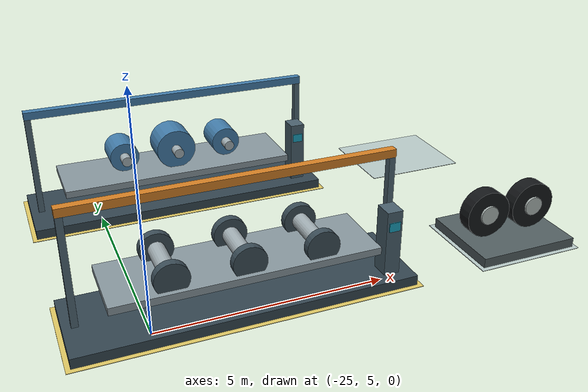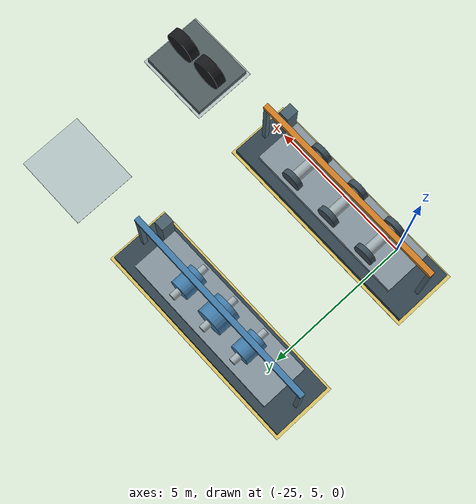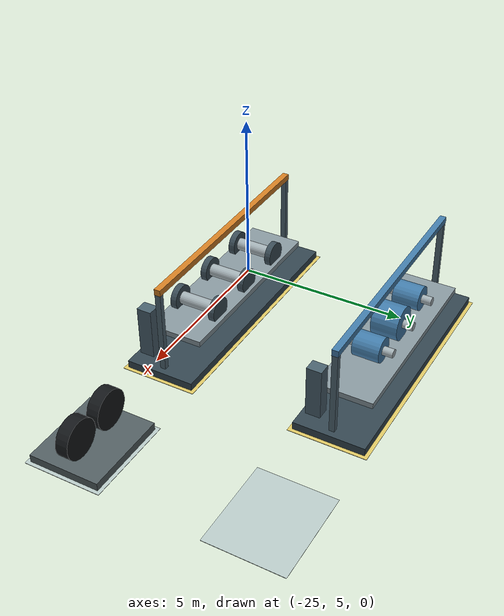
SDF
<sdf version="1.7">
 <world name="warehouse_layout_demo">
  <include><uri>model://sun</uri></include>
  <model name="part_stage_2_line_1_nw_pad">
   <static>true</static>
   <pose>-23.0 5.5 0.012 0 0 0</pose>
   <link name="marking">
    <visual name="visual">
     <geometry><box><size>7.4 2.2 0.012</size></box></geometry>
     <material><ambient>0.87 0.78 0.39 1</ambient><diffuse>0.87 0.78 0.39 1</diffuse></material>
    </visual>
   </link>
  </model>
  <model name="part_stage_2_line_1_nw">
   <static>true</static>
   <pose>-23.0 5.5 0 0 0 0</pose>
   <link name="fixture">
    <collision name="collision">
     <pose>0 0 1.4 0 0 0</pose>
     <geometry><box><size>7.2 2.0 2.8</size></box></geometry>
    </collision>
    <visual name="machine_base">
     <pose>0 0 0.12 0 0 0</pose>
     <geometry><box><size>7.2 2.0 0.24</size></box></geometry>
     <material><ambient>0.20 0.27 0.31 1</ambient><diffuse>0.20 0.27 0.31 1</diffuse></material>
    </visual>
    <visual name="work_table">
     <pose>0 0 0.92 0 0 0</pose>
     <geometry><box><size>5.6 1.6 0.16</size></box></geometry>
     <material><ambient>0.53 0.59 0.62 1</ambient><diffuse>0.53 0.59 0.62 1</diffuse></material>
    </visual>
    <visual name="controller">
     <pose>3.05 -0.63 1.06 0 0 0</pose>
     <geometry><box><size>0.35 0.42 1.46</size></box></geometry>
     <material><ambient>0.29 0.38 0.43 1</ambient><diffuse>0.29 0.38 0.43 1</diffuse></material>
    </visual>
    <visual name="control_screen">
     <pose>3.05 -0.85 1.45 0 0 0</pose>
     <geometry><box><size>0.25 0.02 0.2</size></box></geometry>
     <material><ambient>0.09 0.64 0.75 1</ambient><diffuse>0.09 0.64 0.75 1</diffuse></material>
    </visual>
    <visual name="hoist_post_0">
     <pose>-3.35 0 1.4 0 0 0</pose>
     <geometry><box><size>0.14 0.16 2.72</size></box></geometry>
     <material><ambient>0.31 0.40 0.45 1</ambient><diffuse>0.31 0.40 0.45 1</diffuse></material>
    </visual>
    <visual name="hoist_post_1">
     <pose>3.35 0 1.4 0 0 0</pose>
     <geometry><box><size>0.14 0.16 2.72</size></box></geometry>
     <material><ambient>0.31 0.40 0.45 1</ambient><diffuse>0.31 0.40 0.45 1</diffuse></material>
    </visual>
    <visual name="hoist_beam">
     <pose>0 0 2.71 0 0 0</pose>
     <geometry><box><size>6.85 0.18 0.18</size></box></geometry>
     <material><ambient>0.83 0.50 0.14 1</ambient><diffuse>0.83 0.50 0.14 1</diffuse></material>
    </visual>
    <visual name="axle_0">
     <pose>-1.55 0 1.22 1.57079632679 0 0</pose>
     <geometry><cylinder><radius>0.18</radius><length>1.36</length></cylinder></geometry>
     <material><ambient>0.64 0.69 0.71 1</ambient><diffuse>0.64 0.69 0.71 1</diffuse></material>
    </visual>
    <visual name="hub_0_0">
     <pose>-1.55 -0.6 1.22 1.57079632679 0 0</pose>
     <geometry><cylinder><radius>0.36</radius><length>0.18</length></cylinder></geometry>
     <material><ambient>0.23 0.30 0.34 1</ambient><diffuse>0.23 0.30 0.34 1</diffuse></material>
    </visual>
    <visual name="hub_0_1">
     <pose>-1.55 0.6 1.22 1.57079632679 0 0</pose>
     <geometry><cylinder><radius>0.36</radius><length>0.18</length></cylinder></geometry>
     <material><ambient>0.23 0.30 0.34 1</ambient><diffuse>0.23 0.30 0.34 1</diffuse></material>
    </visual>
    <visual name="axle_1">
     <pose>0 0 1.22 1.57079632679 0 0</pose>
     <geometry><cylinder><radius>0.18</radius><length>1.36</length></cylinder></geometry>
     <material><ambient>0.64 0.69 0.71 1</ambient><diffuse>0.64 0.69 0.71 1</diffuse></material>
    </visual>
    <visual name="hub_1_0">
     <pose>0 -0.6 1.22 1.57079632679 0 0</pose>
     <geometry><cylinder><radius>0.36</radius><length>0.18</length></cylinder></geometry>
     <material><ambient>0.23 0.30 0.34 1</ambient><diffuse>0.23 0.30 0.34 1</diffuse></material>
    </visual>
    <visual name="hub_1_1">
     <pose>0 0.6 1.22 1.57079632679 0 0</pose>
     <geometry><cylinder><radius>0.36</radius><length>0.18</length></cylinder></geometry>
     <material><ambient>0.23 0.30 0.34 1</ambient><diffuse>0.23 0.30 0.34 1</diffuse></material>
    </visual>
    <visual name="axle_2">
     <pose>1.55 0 1.22 1.57079632679 0 0</pose>
     <geometry><cylinder><radius>0.18</radius><length>1.36</length></cylinder></geometry>
     <material><ambient>0.64 0.69 0.71 1</ambient><diffuse>0.64 0.69 0.71 1</diffuse></material>
    </visual>
    <visual name="hub_2_0">
     <pose>1.55 -0.6 1.22 1.57079632679 0 0</pose>
     <geometry><cylinder><radius>0.36</radius><length>0.18</length></cylinder></geometry>
     <material><ambient>0.23 0.30 0.34 1</ambient><diffuse>0.23 0.30 0.34 1</diffuse></material>
    </visual>
    <visual name="hub_2_1">
     <pose>1.55 0.6 1.22 1.57079632679 0 0</pose>
     <geometry><cylinder><radius>0.36</radius><length>0.18</length></cylinder></geometry>
     <material><ambient>0.23 0.30 0.34 1</ambient><diffuse>0.23 0.30 0.34 1</diffuse></material>
    </visual>
   </link>
  </model>
  <model name="parts_kit_2_line_1_nw_pad">
   <static>true</static>
   <pose>-16.5 5.5 0.012 0 0 0</pose>
   <link name="marking">
    <visual name="visual">
     <geometry><box><size>2.6 2.2 0.012</size></box></geometry>
     <material><ambient>0.72 0.79 0.78 1</ambient><diffuse>0.72 0.79 0.78 1</diffuse></material>
    </visual>
   </link>
  </model>
  <model name="parts_kit_2_line_1_nw">
   <static>true</static>
   <pose>-16.5 5.5 0 0 0 0</pose>
   <link name="fixture">
    <collision name="collision">
     <pose>0 0 0.9 0 0 0</pose>
     <geometry><box><size>2.4 2.0 1.8</size></box></geometry>
    </collision>
    <visual name="kit_frame">
     <pose>0 0 0.12 0 0 0</pose>
     <geometry><box><size>2.4 2.0 0.24</size></box></geometry>
     <material><ambient>0.32 0.37 0.38 1</ambient><diffuse>0.32 0.37 0.38 1</diffuse></material>
    </visual>
    <visual name="spare_tire_0">
     <pose>-0.6 0 0.8 1.57079632679 0 0</pose>
     <geometry><cylinder><radius>0.55</radius><length>0.35</length></cylinder></geometry>
     <material><ambient>0.08 0.09 0.10 1</ambient><diffuse>0.08 0.09 0.10 1</diffuse></material>
    </visual>
    <visual name="tire_hub_0">
     <pose>-0.6 -0.2 0.8 1.57079632679 0 0</pose>
     <geometry><cylinder><radius>0.22</radius><length>0.05</length></cylinder></geometry>
     <material><ambient>0.69 0.73 0.72 1</ambient><diffuse>0.69 0.73 0.72 1</diffuse></material>
    </visual>
    <visual name="spare_tire_1">
     <pose>0.6 0 0.8 1.57079632679 0 0</pose>
     <geometry><cylinder><radius>0.55</radius><length>0.35</length></cylinder></geometry>
     <material><ambient>0.08 0.09 0.10 1</ambient><diffuse>0.08 0.09 0.10 1</diffuse></material>
    </visual>
    <visual name="tire_hub_1">
     <pose>0.6 -0.2 0.8 1.57079632679 0 0</pose>
     <geometry><cylinder><radius>0.22</radius><length>0.05</length></cylinder></geometry>
     <material><ambient>0.69 0.73 0.72 1</ambient><diffuse>0.69 0.73 0.72 1</diffuse></material>
    </visual>
   </link>
  </model>
  <model name="part_stage_2_line_2_nw_pad">
   <static>true</static>
   <pose>-23.0 10.5 0.012 0 0 0</pose>
   <link name="marking">
    <visual name="visual">
     <geometry><box><size>7.4 2.2 0.012</size></box></geometry>
     <material><ambient>0.87 0.78 0.39 1</ambient><diffuse>0.87 0.78 0.39 1</diffuse></material>
    </visual>
   </link>
  </model>
  <model name="part_stage_2_line_2_nw">
   <static>true</static>
   <pose>-23.0 10.5 0 0 0 0</pose>
   <link name="fixture">
    <collision name="collision">
     <pose>0 0 1.4 0 0 0</pose>
     <geometry><box><size>7.2 2.0 2.8</size></box></geometry>
    </collision>
    <visual name="machine_base">
     <pose>0 0 0.12 0 0 0</pose>
     <geometry><box><size>7.2 2.0 0.24</size></box></geometry>
     <material><ambient>0.20 0.27 0.31 1</ambient><diffuse>0.20 0.27 0.31 1</diffuse></material>
    </visual>
    <visual name="work_table">
     <pose>0 0 0.92 0 0 0</pose>
     <geometry><box><size>5.6 1.6 0.16</size></box></geometry>
     <material><ambient>0.53 0.59 0.62 1</ambient><diffuse>0.53 0.59 0.62 1</diffuse></material>
    </visual>
    <visual name="controller">
     <pose>3.05 -0.63 1.06 0 0 0</pose>
     <geometry><box><size>0.35 0.42 1.46</size></box></geometry>
     <material><ambient>0.29 0.38 0.43 1</ambient><diffuse>0.29 0.38 0.43 1</diffuse></material>
    </visual>
    <visual name="control_screen">
     <pose>3.05 -0.85 1.45 0 0 0</pose>
     <geometry><box><size>0.25 0.02 0.2</size></box></geometry>
     <material><ambient>0.09 0.64 0.75 1</ambient><diffuse>0.09 0.64 0.75 1</diffuse></material>
    </visual>
    <visual name="hoist_post_0">
     <pose>-3.35 0 1.4 0 0 0</pose>
     <geometry><box><size>0.14 0.16 2.72</size></box></geometry>
     <material><ambient>0.31 0.40 0.45 1</ambient><diffuse>0.31 0.40 0.45 1</diffuse></material>
    </visual>
    <visual name="hoist_post_1">
     <pose>3.35 0 1.4 0 0 0</pose>
     <geometry><box><size>0.14 0.16 2.72</size></box></geometry>
     <material><ambient>0.31 0.40 0.45 1</ambient><diffuse>0.31 0.40 0.45 1</diffuse></material>
    </visual>
    <visual name="hoist_beam">
     <pose>0 0 2.71 0 0 0</pose>
     <geometry><box><size>6.85 0.18 0.18</size></box></geometry>
     <material><ambient>0.26 0.49 0.67 1</ambient><diffuse>0.26 0.49 0.67 1</diffuse></material>
    </visual>
    <visual name="gear_case_0">
     <pose>-1.28 0 1.45 1.57079632679 0 0</pose>
     <geometry><cylinder><radius>0.35</radius><length>0.75</length></cylinder></geometry>
     <material><ambient>0.26 0.49 0.67 1</ambient><diffuse>0.26 0.49 0.67 1</diffuse></material>
    </visual>
    <visual name="drive_shaft_0">
     <pose>-1.28 0 1.45 1.57079632679 0 0</pose>
     <geometry><cylinder><radius>0.12</radius><length>1.32</length></cylinder></geometry>
     <material><ambient>0.64 0.69 0.71 1</ambient><diffuse>0.64 0.69 0.71 1</diffuse></material>
    </visual>
    <visual name="gear_case_1">
     <pose>0 0 1.45 1.57079632679 0 0</pose>
     <geometry><cylinder><radius>0.48</radius><length>0.75</length></cylinder></geometry>
     <material><ambient>0.26 0.49 0.67 1</ambient><diffuse>0.26 0.49 0.67 1</diffuse></material>
    </visual>
    <visual name="drive_shaft_1">
     <pose>0 0 1.45 1.57079632679 0 0</pose>
     <geometry><cylinder><radius>0.12</radius><length>1.32</length></cylinder></geometry>
     <material><ambient>0.64 0.69 0.71 1</ambient><diffuse>0.64 0.69 0.71 1</diffuse></material>
    </visual>
    <visual name="gear_case_2">
     <pose>1.28 0 1.45 1.57079632679 0 0</pose>
     <geometry><cylinder><radius>0.35</radius><length>0.75</length></cylinder></geometry>
     <material><ambient>0.26 0.49 0.67 1</ambient><diffuse>0.26 0.49 0.67 1</diffuse></material>
    </visual>
    <visual name="drive_shaft_2">
     <pose>1.28 0 1.45 1.57079632679 0 0</pose>
     <geometry><cylinder><radius>0.12</radius><length>1.32</length></cylinder></geometry>
     <material><ambient>0.64 0.69 0.71 1</ambient><diffuse>0.64 0.69 0.71 1</diffuse></material>
    </visual>
   </link>
  </model>
  <model name="parts_kit_2_line_2_nw_pad">
   <static>true</static>
   <pose>-16.5 10.5 0.012 0 0 0</pose>
   <link name="marking">
    <visual name="visual">
     <geometry><box><size>2.6 2.2 0.012</size></box></geometry>
     <material><ambient>0.72 0.79 0.78 1</ambient><diffuse>0.72 0.79 0.78 1</diffuse></material>
    </visual>
   </link>
  </model>
 </world>
</sdf>
